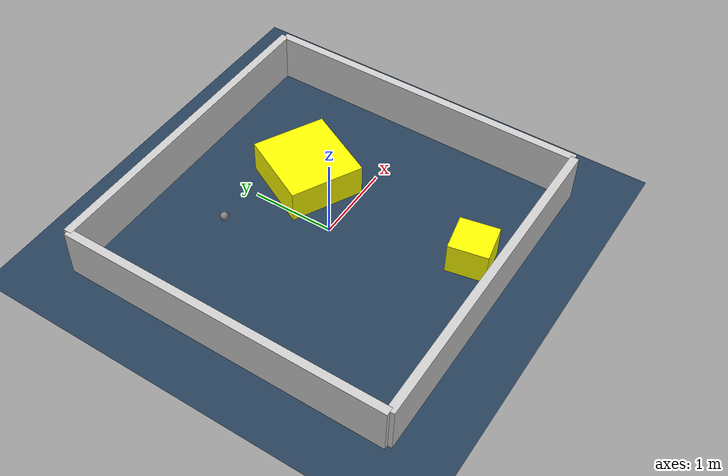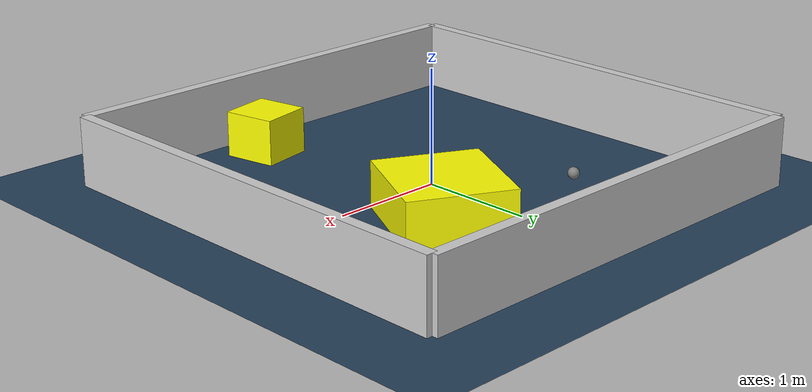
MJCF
<?xml version="1.0" ?>
<mujoco model="generated_environment">
  <option timestep="0.01" integrator="RK4" cone="elliptic"/>
  <default>
    <geom density="1"/>
  </default>
  <asset>
    <texture builtin="gradient" height="3072" rgb1="0.3 0.5 0.7" rgb2="0 0 0" type="skybox" width="512"/>
    <texture builtin="checker" height="300" mark="edge" markrgb="0.8 0.8 0.8" name="groundplane" rgb1="0.2 0.3 0.4" rgb2="0.1 0.2 0.3" type="2d" width="300"/>
    <material name="groundplane" reflectance="0.2" texrepeat="5 5" texture="groundplane" texuniform="true"/>
    <material name="robot" rgba="0.0 1.0 0.0 1"/>
  </asset>
  <worldbody>
    <light dir="0 0 -1" directional="true" pos="0 0 1.5"/>
    <geom condim="4" friction="1.0 0.005 0.001" material="groundplane" name="floor" size="0 0 0.05" type="plane"/>
    <body name="walls">
      <geom name="wall_1" condim="4" pos="-2.0 0.0 0.3" rgba="0.800000011920929 0.800000011920929 0.800000011920929 1.0" size="0.05 2.0 0.3" type="box"/>
      <geom name="wall_2" condim="4" pos="2.0 0.0 0.3" rgba="0.800000011920929 0.800000011920929 0.800000011920929 1.0" size="0.05 2.0 0.3" type="box"/>
      <geom name="wall_3" condim="4" pos="0.0 -2.0 0.3" rgba="0.800000011920929 0.800000011920929 0.800000011920929 1.0" size="2.0 0.05 0.3" type="box"/>
      <geom name="wall_4" condim="4" pos="0.0 2.0 0.3" rgba="0.800000011920929 0.800000011920929 0.800000011920929 1.0" size="2.0 0.05 0.3" type="box"/>
    </body>
    <body name="robot">
      <joint name="joint_x" type="slide" pos="0 0 0" axis="1 0 0"/>
      <joint name="joint_y" type="slide" pos="0 0 0" axis="0 1 0"/>
      <geom name="robot" type="sphere" pos="-0.6230100167878296 0.9953441903610556 0.2" size="0.05" mass="5." friction="1.0 0.005 0.0001" condim="4"/>
      <site name="sensor_ball"/>
    </body>
    <body name="obstacle_1_movable">
      <geom name="obstacle_1_movable" condim="4" pos="0.5212626354274694 0.6488589075499038 0.2" euler="0 0 242.80211135388026" friction="1.0 0.005 0.001" rgba="1 1 0 1" size="0.47870412688825903 0.45397334505133896 0.2" type="box" mass="0.1"/>
      <joint type="free"/>
    </body>
    <body name="obstacle_2_movable">
      <geom name="obstacle_2_movable" condim="4" pos="0.4760090724052677 -1.5590769454801021 0.2" euler="0 0 11.191751132832387" friction="1.0 0.005 0.001" rgba="1 1 0 1" size="0.22966839573793713 0.2334207647445183 0.2" type="box" mass="0.1"/>
      <joint type="free"/>
    </body>
  </worldbody>
  <actuator>
    <motor name="actuator_x" joint="joint_x" gear="1" ctrlrange="-1 1"/>
    <motor name="actuator_y" joint="joint_y" gear="1" ctrlrange="-1 1"/>
  </actuator>
</mujoco>
